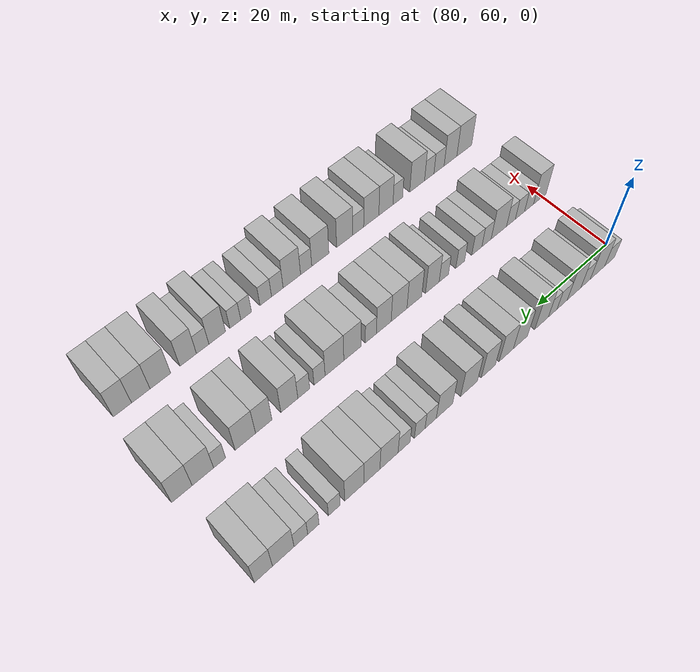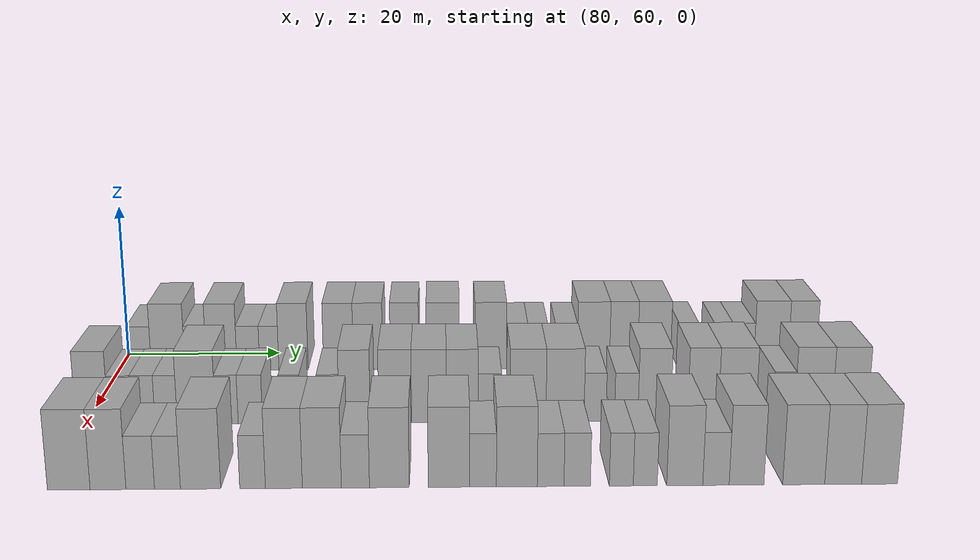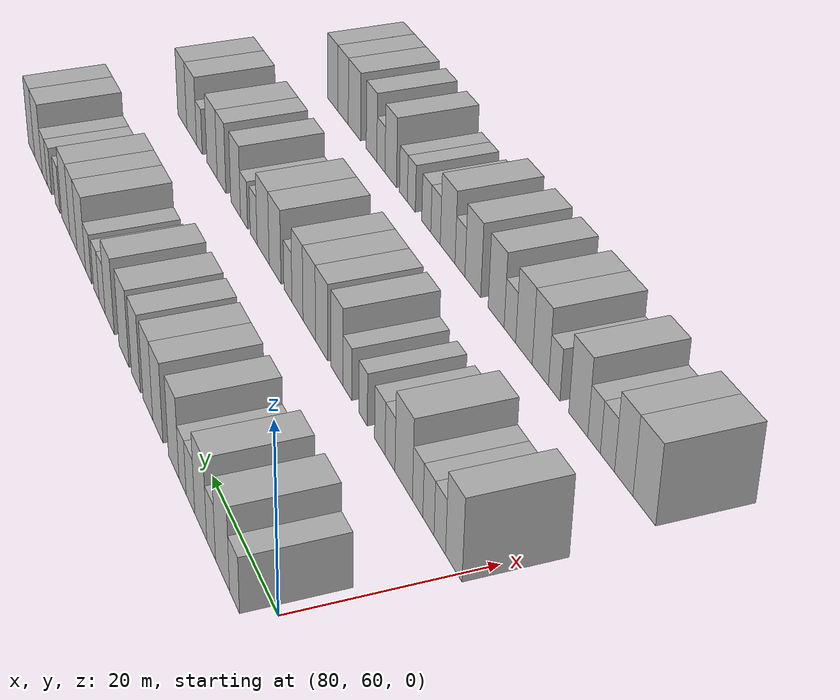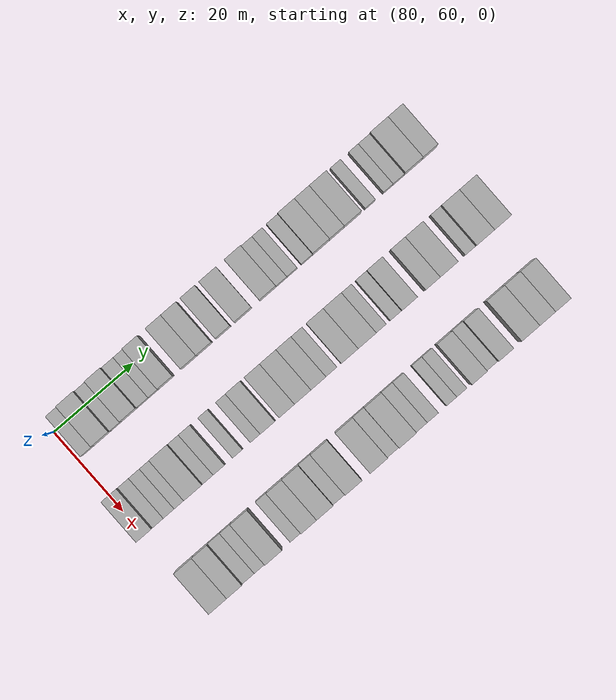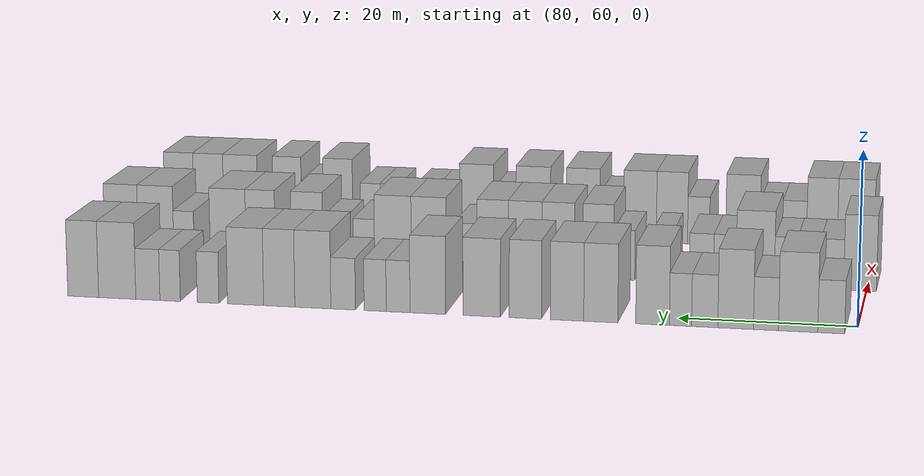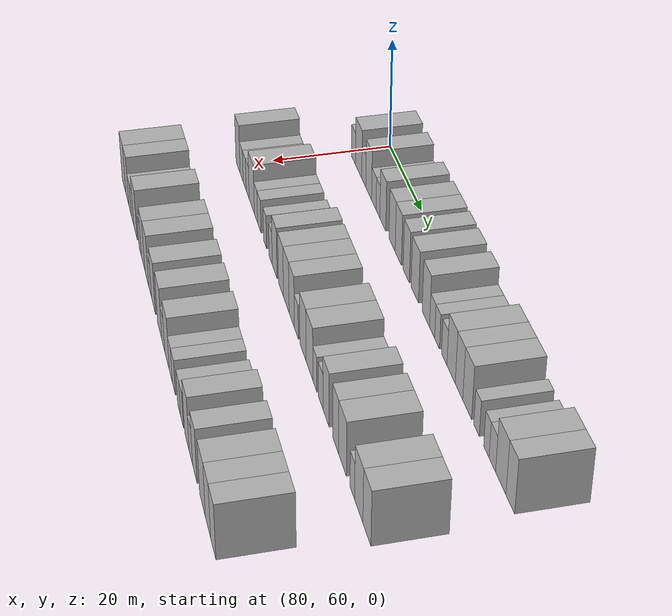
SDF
<sdf version="1.6">
 <world name="default">
  <model name="building_625">
   <static>1</static>
   <pose>82.0000 62.7774 0 0.000000 0.000000 0.000000</pose>
   <link name="link">
    <pose>0 0 3.00 0 0 0</pose>
    <collision name="collision"><geometry><box><size>10.0000 2.9419 6.0000</size></box></geometry></collision>
    <visual name="visual">
     <cast_shadows>0</cast_shadows>
     <geometry><box><size>10.0000 2.9419 6.0000</size></box></geometry>
     <material>
      <script>
       <uri>model://HANNAS_wall/materials/scripts</uri>
       <uri>model://HANNAS_wall/materials/textures</uri>
       <name>vrc/HANNAS_wall</name>
      </script>
     </material>
    </visual>
   </link>
  </model>
  <model name="building_626">
   <static>1</static>
   <pose>82.0000 66.4044 0 0.000000 0.000000 0.000000</pose>
   <link name="link">
    <pose>0 0 4.50 0 0 0</pose>
    <collision name="collision"><geometry><box><size>10.0000 4.3121 9.0000</size></box></geometry></collision>
    <visual name="visual">
     <cast_shadows>0</cast_shadows>
     <geometry><box><size>10.0000 4.3121 9.0000</size></box></geometry>
     <material>
      <script>
       <uri>model://HANNAS_wall/materials/scripts</uri>
       <uri>model://HANNAS_wall/materials/textures</uri>
       <name>vrc/HANNAS_wall</name>
      </script>
     </material>
    </visual>
   </link>
  </model>
  <model name="building_627">
   <static>1</static>
   <pose>82.0000 69.9428 0 0.000000 0.000000 0.000000</pose>
   <link name="link">
    <pose>0 0 3.00 0 0 0</pose>
    <collision name="collision"><geometry><box><size>10.0000 2.7647 6.0000</size></box></geometry></collision>
    <visual name="visual">
     <cast_shadows>0</cast_shadows>
     <geometry><box><size>10.0000 2.7647 6.0000</size></box></geometry>
     <material>
      <script>
       <uri>model://HANNAS_wall/materials/scripts</uri>
       <uri>model://HANNAS_wall/materials/textures</uri>
       <name>vrc/HANNAS_wall</name>
      </script>
     </material>
    </visual>
   </link>
  </model>
  <model name="building_628">
   <static>1</static>
   <pose>82.0000 73.2888 0 0.000000 0.000000 0.000000</pose>
   <link name="link">
    <pose>0 0 4.50 0 0 0</pose>
    <collision name="collision"><geometry><box><size>10.0000 3.9273 9.0000</size></box></geometry></collision>
    <visual name="visual">
     <cast_shadows>0</cast_shadows>
     <geometry><box><size>10.0000 3.9273 9.0000</size></box></geometry>
     <material>
      <script>
       <uri>model://HANNAS_wall/materials/scripts</uri>
       <uri>model://HANNAS_wall/materials/textures</uri>
       <name>vrc/HANNAS_wall</name>
      </script>
     </material>
    </visual>
   </link>
  </model>
  <model name="building_629">
   <static>1</static>
   <pose>82.0000 76.7108 0 0.000000 0.000000 0.000000</pose>
   <link name="link">
    <pose>0 0 3.00 0 0 0</pose>
    <collision name="collision"><geometry><box><size>10.0000 2.9167 6.0000</size></box></geometry></collision>
    <visual name="visual">
     <cast_shadows>0</cast_shadows>
     <geometry><box><size>10.0000 2.9167 6.0000</size></box></geometry>
     <material>
      <script>
       <uri>model://HANNAS_wall/materials/scripts</uri>
       <uri>model://HANNAS_wall/materials/textures</uri>
       <name>vrc/HANNAS_wall</name>
      </script>
     </material>
    </visual>
   </link>
  </model>
  <model name="building_630">
   <static>1</static>
   <pose>82.0000 79.4009 0 0.000000 0.000000 0.000000</pose>
   <link name="link">
    <pose>0 0 3.00 0 0 0</pose>
    <collision name="collision"><geometry><box><size>10.0000 2.4635 6.0000</size></box></geometry></collision>
    <visual name="visual">
     <cast_shadows>0</cast_shadows>
     <geometry><box><size>10.0000 2.4635 6.0000</size></box></geometry>
     <material>
      <script>
       <uri>model://HANNAS_wall/materials/scripts</uri>
       <uri>model://HANNAS_wall/materials/textures</uri>
       <name>vrc/HANNAS_wall</name>
      </script>
     </material>
    </visual>
   </link>
  </model>
  <model name="building_631">
   <static>1</static>
   <pose>82.0000 82.5160 0 0.000000 0.000000 0.000000</pose>
   <link name="link">
    <pose>0 0 4.50 0 0 0</pose>
    <collision name="collision"><geometry><box><size>10.0000 3.7666 9.0000</size></box></geometry></collision>
    <visual name="visual">
     <cast_shadows>0</cast_shadows>
     <geometry><box><size>10.0000 3.7666 9.0000</size></box></geometry>
     <material>
      <script>
       <uri>model://HANNAS_wall/materials/scripts</uri>
       <uri>model://HANNAS_wall/materials/textures</uri>
       <name>vrc/HANNAS_wall</name>
      </script>
     </material>
    </visual>
   </link>
  </model>
  <model name="building_632">
   <static>1</static>
   <pose>82.0000 88.3136 0 0.000000 0.000000 0.000000</pose>
   <link name="link">
    <pose>0 0 4.50 0 0 0</pose>
    <collision name="collision"><geometry><box><size>10.0000 3.8288 9.0000</size></box></geometry></collision>
    <visual name="visual">
     <cast_shadows>0</cast_shadows>
     <geometry><box><size>10.0000 3.8288 9.0000</size></box></geometry>
     <material>
      <script>
       <uri>model://HANNAS_wall/materials/scripts</uri>
       <uri>model://HANNAS_wall/materials/textures</uri>
       <name>vrc/HANNAS_wall</name>
      </script>
     </material>
    </visual>
   </link>
  </model>
  <model name="building_633">
   <static>1</static>
   <pose>82.0000 92.1205 0 0.000000 0.000000 0.000000</pose>
   <link name="link">
    <pose>0 0 4.50 0 0 0</pose>
    <collision name="collision"><geometry><box><size>10.0000 3.7850 9.0000</size></box></geometry></collision>
    <visual name="visual">
     <cast_shadows>0</cast_shadows>
     <geometry><box><size>10.0000 3.7850 9.0000</size></box></geometry>
     <material>
      <script>
       <uri>model://HANNAS_wall/materials/scripts</uri>
       <uri>model://HANNAS_wall/materials/textures</uri>
       <name>vrc/HANNAS_wall</name>
      </script>
     </material>
    </visual>
   </link>
  </model>
  <model name="building_634">
   <static>1</static>
   <pose>82.0000 96.8387 0 0.000000 0.000000 0.000000</pose>
   <link name="link">
    <pose>0 0 4.50 0 0 0</pose>
    <collision name="collision"><geometry><box><size>10.0000 3.6514 9.0000</size></box></geometry></collision>
    <visual name="visual">
     <cast_shadows>0</cast_shadows>
     <geometry><box><size>10.0000 3.6514 9.0000</size></box></geometry>
     <material>
      <script>
       <uri>model://HANNAS_wall/materials/scripts</uri>
       <uri>model://HANNAS_wall/materials/textures</uri>
       <name>vrc/HANNAS_wall</name>
      </script>
     </material>
    </visual>
   </link>
  </model>
  <model name="building_635">
   <static>1</static>
   <pose>82.0000 101.7989 0 0.000000 0.000000 0.000000</pose>
   <link name="link">
    <pose>0 0 4.50 0 0 0</pose>
    <collision name="collision"><geometry><box><size>10.0000 4.2690 9.0000</size></box></geometry></collision>
    <visual name="visual">
     <cast_shadows>0</cast_shadows>
     <geometry><box><size>10.0000 4.2690 9.0000</size></box></geometry>
     <material>
      <script>
       <uri>model://HANNAS_wall/materials/scripts</uri>
       <uri>model://HANNAS_wall/materials/textures</uri>
       <name>vrc/HANNAS_wall</name>
      </script>
     </material>
    </visual>
   </link>
  </model>
  <model name="building_636">
   <static>1</static>
   <pose>82.0000 107.9716 0 0.000000 0.000000 0.000000</pose>
   <link name="link">
    <pose>0 0 4.50 0 0 0</pose>
    <collision name="collision"><geometry><box><size>10.0000 4.0763 9.0000</size></box></geometry></collision>
    <visual name="visual">
     <cast_shadows>0</cast_shadows>
     <geometry><box><size>10.0000 4.0763 9.0000</size></box></geometry>
     <material>
      <script>
       <uri>model://HANNAS_wall/materials/scripts</uri>
       <uri>model://HANNAS_wall/materials/textures</uri>
       <name>vrc/HANNAS_wall</name>
      </script>
     </material>
    </visual>
   </link>
  </model>
  <model name="building_637">
   <static>1</static>
   <pose>82.0000 111.3752 0 0.000000 0.000000 0.000000</pose>
   <link name="link">
    <pose>0 0 3.00 0 0 0</pose>
    <collision name="collision"><geometry><box><size>10.0000 2.7310 6.0000</size></box></geometry></collision>
    <visual name="visual">
     <cast_shadows>0</cast_shadows>
     <geometry><box><size>10.0000 2.7310 6.0000</size></box></geometry>
     <material>
      <script>
       <uri>model://HANNAS_wall/materials/scripts</uri>
       <uri>model://HANNAS_wall/materials/textures</uri>
       <name>vrc/HANNAS_wall</name>
      </script>
     </material>
    </visual>
   </link>
  </model>
  <model name="building_638">
   <static>1</static>
   <pose>82.0000 114.0238 0 0.000000 0.000000 0.000000</pose>
   <link name="link">
    <pose>0 0 3.00 0 0 0</pose>
    <collision name="collision"><geometry><box><size>10.0000 2.5661 6.0000</size></box></geometry></collision>
    <visual name="visual">
     <cast_shadows>0</cast_shadows>
     <geometry><box><size>10.0000 2.5661 6.0000</size></box></geometry>
     <material>
      <script>
       <uri>model://HANNAS_wall/materials/scripts</uri>
       <uri>model://HANNAS_wall/materials/textures</uri>
       <name>vrc/HANNAS_wall</name>
      </script>
     </material>
    </visual>
   </link>
  </model>
  <model name="building_639">
   <static>1</static>
   <pose>82.0000 117.7300 0 0.000000 0.000000 0.000000</pose>
   <link name="link">
    <pose>0 0 3.00 0 0 0</pose>
    <collision name="collision"><geometry><box><size>10.0000 2.8463 6.0000</size></box></geometry></collision>
    <visual name="visual">
     <cast_shadows>0</cast_shadows>
     <geometry><box><size>10.0000 2.8463 6.0000</size></box></geometry>
     <material>
      <script>
       <uri>model://HANNAS_wall/materials/scripts</uri>
       <uri>model://HANNAS_wall/materials/textures</uri>
       <name>vrc/HANNAS_wall</name>
      </script>
     </material>
    </visual>
   </link>
  </model>
  <model name="building_640">
   <static>1</static>
   <pose>82.0000 121.2483 0 0.000000 0.000000 0.000000</pose>
   <link name="link">
    <pose>0 0 4.50 0 0 0</pose>
    <collision name="collision"><geometry><box><size>10.0000 4.1904 9.0000</size></box></geometry></collision>
    <visual name="visual">
     <cast_shadows>0</cast_shadows>
     <geometry><box><size>10.0000 4.1904 9.0000</size></box></geometry>
     <material>
      <script>
       <uri>model://HANNAS_wall/materials/scripts</uri>
       <uri>model://HANNAS_wall/materials/textures</uri>
       <name>vrc/HANNAS_wall</name>
      </script>
     </material>
    </visual>
   </link>
  </model>
  <model name="building_641">
   <static>1</static>
   <pose>82.0000 125.1697 0 0.000000 0.000000 0.000000</pose>
   <link name="link">
    <pose>0 0 4.50 0 0 0</pose>
    <collision name="collision"><geometry><box><size>10.0000 3.6525 9.0000</size></box></geometry></collision>
    <visual name="visual">
     <cast_shadows>0</cast_shadows>
     <geometry><box><size>10.0000 3.6525 9.0000</size></box></geometry>
     <material>
      <script>
       <uri>model://HANNAS_wall/materials/scripts</uri>
       <uri>model://HANNAS_wall/materials/textures</uri>
       <name>vrc/HANNAS_wall</name>
      </script>
     </material>
    </visual>
   </link>
  </model>
  <model name="building_642">
   <static>1</static>
   <pose>82.0000 129.1189 0 0.000000 0.000000 0.000000</pose>
   <link name="link">
    <pose>0 0 4.50 0 0 0</pose>
    <collision name="collision"><geometry><box><size>10.0000 4.2458 9.0000</size></box></geometry></collision>
    <visual name="visual">
     <cast_shadows>0</cast_shadows>
     <geometry><box><size>10.0000 4.2458 9.0000</size></box></geometry>
     <material>
      <script>
       <uri>model://HANNAS_wall/materials/scripts</uri>
       <uri>model://HANNAS_wall/materials/textures</uri>
       <name>vrc/HANNAS_wall</name>
      </script>
     </material>
    </visual>
   </link>
  </model>
  <model name="building_643">
   <static>1</static>
   <pose>82.0000 133.5250 0 0.000000 0.000000 0.000000</pose>
   <link name="link">
    <pose>0 0 3.00 0 0 0</pose>
    <collision name="collision"><geometry><box><size>10.0000 2.5663 6.0000</size></box></geometry></collision>
    <visual name="visual">
     <cast_shadows>0</cast_shadows>
     <geometry><box><size>10.0000 2.5663 6.0000</size></box></geometry>
     <material>
      <script>
       <uri>model://HANNAS_wall/materials/scripts</uri>
       <uri>model://HANNAS_wall/materials/textures</uri>
       <name>vrc/HANNAS_wall</name>
      </script>
     </material>
    </visual>
   </link>
  </model>
  <model name="building_644">
   <static>1</static>
   <pose>82.0000 138.0152 0 0.000000 0.000000 0.000000</pose>
   <link name="link">
    <pose>0 0 3.00 0 0 0</pose>
    <collision name="collision"><geometry><box><size>10.0000 2.4141 6.0000</size></box></geometry></collision>
    <visual name="visual">
     <cast_shadows>0</cast_shadows>
     <geometry><box><size>10.0000 2.4141 6.0000</size></box></geometry>
     <material>
      <script>
       <uri>model://HANNAS_wall/materials/scripts</uri>
       <uri>model://HANNAS_wall/materials/textures</uri>
       <name>vrc/HANNAS_wall</name>
      </script>
     </material>
    </visual>
   </link>
  </model>
  <model name="building_645">
   <static>1</static>
   <pose>82.0000 140.6534 0 0.000000 0.000000 0.000000</pose>
   <link name="link">
    <pose>0 0 3.00 0 0 0</pose>
    <collision name="collision"><geometry><box><size>10.0000 2.8622 6.0000</size></box></geometry></collision>
    <visual name="visual">
     <cast_shadows>0</cast_shadows>
     <geometry><box><size>10.0000 2.8622 6.0000</size></box></geometry>
     <material>
      <script>
       <uri>model://HANNAS_wall/materials/scripts</uri>
       <uri>model://HANNAS_wall/materials/textures</uri>
       <name>vrc/HANNAS_wall</name>
      </script>
     </material>
    </visual>
   </link>
  </model>
  <model name="building_646">
   <static>1</static>
   <pose>82.0000 144.3060 0 0.000000 0.000000 0.000000</pose>
   <link name="link">
    <pose>0 0 4.50 0 0 0</pose>
    <collision name="collision"><geometry><box><size>10.0000 4.4430 9.0000</size></box></geometry></collision>
    <visual name="visual">
     <cast_shadows>0</cast_shadows>
     <geometry><box><size>10.0000 4.4430 9.0000</size></box></geometry>
     <material>
      <script>
       <uri>model://HANNAS_wall/materials/scripts</uri>
       <uri>model://HANNAS_wall/materials/textures</uri>
       <name>vrc/HANNAS_wall</name>
      </script>
     </material>
    </visual>
   </link>
  </model>
  <model name="building_647">
   <static>1</static>
   <pose>82.0000 148.3670 0 0.000000 0.000000 0.000000</pose>
   <link name="link">
    <pose>0 0 4.50 0 0 0</pose>
    <collision name="collision"><geometry><box><size>10.0000 3.6790 9.0000</size></box></geometry></collision>
    <visual name="visual">
     <cast_shadows>0</cast_shadows>
     <geometry><box><size>10.0000 3.6790 9.0000</size></box></geometry>
     <material>
      <script>
       <uri>model://HANNAS_wall/materials/scripts</uri>
       <uri>model://HANNAS_wall/materials/textures</uri>
       <name>vrc/HANNAS_wall</name>
      </script>
     </material>
    </visual>
   </link>
  </model>
  <model name="building_803">
   <static>1</static>
   <pose>101.0000 60.8245 0 0.000000 0.000000 0.000000</pose>
   <link name="link">
    <pose>0 0 4.50 0 0 0</pose>
    <collision name="collision"><geometry><box><size>10.0000 3.7912 9.0000</size></box></geometry></collision>
    <visual name="visual">
     <cast_shadows>0</cast_shadows>
     <geometry><box><size>10.0000 3.7912 9.0000</size></box></geometry>
     <material>
      <script>
       <uri>model://HANNAS_wall/materials/scripts</uri>
       <uri>model://HANNAS_wall/materials/textures</uri>
       <name>vrc/HANNAS_wall</name>
      </script>
     </material>
    </visual>
   </link>
  </model>
  <model name="building_804">
   <static>1</static>
   <pose>101.0000 64.0797 0 0.000000 0.000000 0.000000</pose>
   <link name="link">
    <pose>0 0 3.00 0 0 0</pose>
    <collision name="collision"><geometry><box><size>10.0000 2.7193 6.0000</size></box></geometry></collision>
    <visual name="visual">
     <cast_shadows>0</cast_shadows>
     <geometry><box><size>10.0000 2.7193 6.0000</size></box></geometry>
     <material>
      <script>
       <uri>model://HANNAS_wall/materials/scripts</uri>
       <uri>model://HANNAS_wall/materials/textures</uri>
       <name>vrc/HANNAS_wall</name>
      </script>
     </material>
    </visual>
   </link>
  </model>
  <model name="building_805">
   <static>1</static>
   <pose>101.0000 66.7904 0 0.000000 0.000000 0.000000</pose>
   <link name="link">
    <pose>0 0 3.00 0 0 0</pose>
    <collision name="collision"><geometry><box><size>10.0000 2.7021 6.0000</size></box></geometry></collision>
    <visual name="visual">
     <cast_shadows>0</cast_shadows>
     <geometry><box><size>10.0000 2.7021 6.0000</size></box></geometry>
     <material>
      <script>
       <uri>model://HANNAS_wall/materials/scripts</uri>
       <uri>model://HANNAS_wall/materials/textures</uri>
       <name>vrc/HANNAS_wall</name>
      </script>
     </material>
    </visual>
   </link>
  </model>
  <model name="building_806">
   <static>1</static>
   <pose>101.0000 69.4376 0 0.000000 0.000000 0.000000</pose>
   <link name="link">
    <pose>0 0 3.00 0 0 0</pose>
    <collision name="collision"><geometry><box><size>10.0000 2.5922 6.0000</size></box></geometry></collision>
    <visual name="visual">
     <cast_shadows>0</cast_shadows>
     <geometry><box><size>10.0000 2.5922 6.0000</size></box></geometry>
     <material>
      <script>
       <uri>model://HANNAS_wall/materials/scripts</uri>
       <uri>model://HANNAS_wall/materials/textures</uri>
       <name>vrc/HANNAS_wall</name>
      </script>
     </material>
    </visual>
   </link>
  </model>
  <model name="building_807">
   <static>1</static>
   <pose>101.0000 72.9693 0 0.000000 0.000000 0.000000</pose>
   <link name="link">
    <pose>0 0 4.50 0 0 0</pose>
    <collision name="collision"><geometry><box><size>10.0000 4.4713 9.0000</size></box></geometry></collision>
    <visual name="visual">
     <cast_shadows>0</cast_shadows>
     <geometry><box><size>10.0000 4.4713 9.0000</size></box></geometry>
     <material>
      <script>
       <uri>model://HANNAS_wall/materials/scripts</uri>
       <uri>model://HANNAS_wall/materials/textures</uri>
       <name>vrc/HANNAS_wall</name>
      </script>
     </material>
    </visual>
   </link>
  </model>
  <model name="building_808">
   <static>1</static>
   <pose>101.0000 76.5207 0 0.000000 0.000000 0.000000</pose>
   <link name="link">
    <pose>0 0 3.00 0 0 0</pose>
    <collision name="collision"><geometry><box><size>10.0000 2.6314 6.0000</size></box></geometry></collision>
    <visual name="visual">
     <cast_shadows>0</cast_shadows>
     <geometry><box><size>10.0000 2.6314 6.0000</size></box></geometry>
     <material>
      <script>
       <uri>model://HANNAS_wall/materials/scripts</uri>
       <uri>model://HANNAS_wall/materials/textures</uri>
       <name>vrc/HANNAS_wall</name>
      </script>
     </material>
    </visual>
   </link>
  </model>
  <model name="building_809">
   <static>1</static>
   <pose>101.0000 79.2591 0 0.000000 0.000000 0.000000</pose>
   <link name="link">
    <pose>0 0 3.00 0 0 0</pose>
    <collision name="collision"><geometry><box><size>10.0000 2.8453 6.0000</size></box></geometry></collision>
    <visual name="visual">
     <cast_shadows>0</cast_shadows>
     <geometry><box><size>10.0000 2.8453 6.0000</size></box></geometry>
     <material>
      <script>
       <uri>model://HANNAS_wall/materials/scripts</uri>
       <uri>model://HANNAS_wall/materials/textures</uri>
       <name>vrc/HANNAS_wall</name>
      </script>
     </material>
    </visual>
   </link>
  </model>
  <model name="building_810">
   <static>1</static>
   <pose>101.0000 83.8933 0 0.000000 0.000000 0.000000</pose>
   <link name="link">
    <pose>0 0 3.00 0 0 0</pose>
    <collision name="collision"><geometry><box><size>10.0000 2.4231 6.0000</size></box></geometry></collision>
    <visual name="visual">
     <cast_shadows>0</cast_shadows>
     <geometry><box><size>10.0000 2.4231 6.0000</size></box></geometry>
     <material>
      <script>
       <uri>model://HANNAS_wall/materials/scripts</uri>
       <uri>model://HANNAS_wall/materials/textures</uri>
       <name>vrc/HANNAS_wall</name>
      </script>
     </material>
    </visual>
   </link>
  </model>
  <model name="building_811">
   <static>1</static>
   <pose>101.0000 88.3758 0 0.000000 0.000000 0.000000</pose>
   <link name="link">
    <pose>0 0 3.00 0 0 0</pose>
    <collision name="collision"><geometry><box><size>10.0000 2.5420 6.0000</size></box></geometry></collision>
    <visual name="visual">
     <cast_shadows>0</cast_shadows>
     <geometry><box><size>10.0000 2.5420 6.0000</size></box></geometry>
     <material>
      <script>
       <uri>model://HANNAS_wall/materials/scripts</uri>
       <uri>model://HANNAS_wall/materials/textures</uri>
       <name>vrc/HANNAS_wall</name>
      </script>
     </material>
    </visual>
   </link>
  </model>
  <model name="building_812">
   <static>1</static>
   <pose>101.0000 91.4692 0 0.000000 0.000000 0.000000</pose>
   <link name="link">
    <pose>0 0 4.50 0 0 0</pose>
    <collision name="collision"><geometry><box><size>10.0000 3.6448 9.0000</size></box></geometry></collision>
    <visual name="visual">
     <cast_shadows>0</cast_shadows>
     <geometry><box><size>10.0000 3.6448 9.0000</size></box></geometry>
     <material>
      <script>
       <uri>model://HANNAS_wall/materials/scripts</uri>
       <uri>model://HANNAS_wall/materials/textures</uri>
       <name>vrc/HANNAS_wall</name>
      </script>
     </material>
    </visual>
   </link>
  </model>
  <model name="building_813">
   <static>1</static>
   <pose>101.0000 96.2121 0 0.000000 0.000000 0.000000</pose>
   <link name="link">
    <pose>0 0 4.50 0 0 0</pose>
    <collision name="collision"><geometry><box><size>10.0000 3.8410 9.0000</size></box></geometry></collision>
    <visual name="visual">
     <cast_shadows>0</cast_shadows>
     <geometry><box><size>10.0000 3.8410 9.0000</size></box></geometry>
     <material>
      <script>
       <uri>model://HANNAS_wall/materials/scripts</uri>
       <uri>model://HANNAS_wall/materials/textures</uri>
       <name>vrc/HANNAS_wall</name>
      </script>
     </material>
    </visual>
   </link>
  </model>
  <model name="building_814">
   <static>1</static>
   <pose>101.0000 100.1646 0 0.000000 0.000000 0.000000</pose>
   <link name="link">
    <pose>0 0 4.50 0 0 0</pose>
    <collision name="collision"><geometry><box><size>10.0000 4.0640 9.0000</size></box></geometry></collision>
    <visual name="visual">
     <cast_shadows>0</cast_shadows>
     <geometry><box><size>10.0000 4.0640 9.0000</size></box></geometry>
     <material>
      <script>
       <uri>model://HANNAS_wall/materials/scripts</uri>
       <uri>model://HANNAS_wall/materials/textures</uri>
       <name>vrc/HANNAS_wall</name>
      </script>
     </material>
    </visual>
   </link>
  </model>
  <model name="building_815">
   <static>1</static>
   <pose>101.0000 104.0586 0 0.000000 0.000000 0.000000</pose>
   <link name="link">
    <pose>0 0 4.50 0 0 0</pose>
    <collision name="collision"><geometry><box><size>10.0000 3.7241 9.0000</size></box></geometry></collision>
    <visual name="visual">
     <cast_shadows>0</cast_shadows>
     <geometry><box><size>10.0000 3.7241 9.0000</size></box></geometry>
     <material>
      <script>
       <uri>model://HANNAS_wall/materials/scripts</uri>
       <uri>model://HANNAS_wall/materials/textures</uri>
       <name>vrc/HANNAS_wall</name>
      </script>
     </material>
    </visual>
   </link>
  </model>
  <model name="building_816">
   <static>1</static>
   <pose>101.0000 107.3016 0 0.000000 0.000000 0.000000</pose>
   <link name="link">
    <pose>0 0 3.00 0 0 0</pose>
    <collision name="collision"><geometry><box><size>10.0000 2.7618 6.0000</size></box></geometry></collision>
    <visual name="visual">
     <cast_shadows>0</cast_shadows>
     <geometry><box><size>10.0000 2.7618 6.0000</size></box></geometry>
     <material>
      <script>
       <uri>model://HANNAS_wall/materials/scripts</uri>
       <uri>model://HANNAS_wall/materials/textures</uri>
       <name>vrc/HANNAS_wall</name>
      </script>
     </material>
    </visual>
   </link>
  </model>
  <model name="building_817">
   <static>1</static>
   <pose>101.0000 111.7933 0 0.000000 0.000000 0.000000</pose>
   <link name="link">
    <pose>0 0 4.50 0 0 0</pose>
    <collision name="collision"><geometry><box><size>10.0000 4.2216 9.0000</size></box></geometry></collision>
    <visual name="visual">
     <cast_shadows>0</cast_shadows>
     <geometry><box><size>10.0000 4.2216 9.0000</size></box></geometry>
     <material>
      <script>
       <uri>model://HANNAS_wall/materials/scripts</uri>
       <uri>model://HANNAS_wall/materials/textures</uri>
       <name>vrc/HANNAS_wall</name>
      </script>
     </material>
    </visual>
   </link>
  </model>
  <model name="building_818">
   <static>1</static>
   <pose>101.0000 116.1415 0 0.000000 0.000000 0.000000</pose>
   <link name="link">
    <pose>0 0 4.50 0 0 0</pose>
    <collision name="collision"><geometry><box><size>10.0000 4.4748 9.0000</size></box></geometry></collision>
    <visual name="visual">
     <cast_shadows>0</cast_shadows>
     <geometry><box><size>10.0000 4.4748 9.0000</size></box></geometry>
     <material>
      <script>
       <uri>model://HANNAS_wall/materials/scripts</uri>
       <uri>model://HANNAS_wall/materials/textures</uri>
       <name>vrc/HANNAS_wall</name>
      </script>
     </material>
    </visual>
   </link>
  </model>
  <model name="building_819">
   <static>1</static>
   <pose>101.0000 119.6735 0 0.000000 0.000000 0.000000</pose>
   <link name="link">
    <pose>0 0 3.00 0 0 0</pose>
    <collision name="collision"><geometry><box><size>10.0000 2.5893 6.0000</size></box></geometry></collision>
    <visual name="visual">
     <cast_shadows>0</cast_shadows>
     <geometry><box><size>10.0000 2.5893 6.0000</size></box></geometry>
     <material>
      <script>
       <uri>model://HANNAS_wall/materials/scripts</uri>
       <uri>model://HANNAS_wall/materials/textures</uri>
       <name>vrc/HANNAS_wall</name>
      </script>
     </material>
    </visual>
   </link>
  </model>
  <model name="building_820">
   <static>1</static>
   <pose>101.0000 123.3445 0 0.000000 0.000000 0.000000</pose>
   <link name="link">
    <pose>0 0 3.00 0 0 0</pose>
    <collision name="collision"><geometry><box><size>10.0000 2.7526 6.0000</size></box></geometry></collision>
    <visual name="visual">
     <cast_shadows>0</cast_shadows>
     <geometry><box><size>10.0000 2.7526 6.0000</size></box></geometry>
     <material>
      <script>
       <uri>model://HANNAS_wall/materials/scripts</uri>
       <uri>model://HANNAS_wall/materials/textures</uri>
       <name>vrc/HANNAS_wall</name>
      </script>
     </material>
    </visual>
   </link>
  </model>
  <model name="building_821">
   <static>1</static>
   <pose>101.0000 126.6466 0 0.000000 0.000000 0.000000</pose>
   <link name="link">
    <pose>0 0 4.50 0 0 0</pose>
    <collision name="collision"><geometry><box><size>10.0000 3.8517 9.0000</size></box></geometry></collision>
    <visual name="visual">
     <cast_shadows>0</cast_shadows>
     <geometry><box><size>10.0000 3.8517 9.0000</size></box></geometry>
     <material>
      <script>
       <uri>model://HANNAS_wall/materials/scripts</uri>
       <uri>model://HANNAS_wall/materials/textures</uri>
       <name>vrc/HANNAS_wall</name>
      </script>
     </material>
    </visual>
   </link>
  </model>
  <model name="building_822">
   <static>1</static>
   <pose>101.0000 132.3838 0 0.000000 0.000000 0.000000</pose>
   <link name="link">
    <pose>0 0 4.50 0 0 0</pose>
    <collision name="collision"><geometry><box><size>10.0000 3.6226 9.0000</size></box></geometry></collision>
    <visual name="visual">
     <cast_shadows>0</cast_shadows>
     <geometry><box><size>10.0000 3.6226 9.0000</size></box></geometry>
     <material>
      <script>
       <uri>model://HANNAS_wall/materials/scripts</uri>
       <uri>model://HANNAS_wall/materials/textures</uri>
       <name>vrc/HANNAS_wall</name>
      </script>
     </material>
    </visual>
   </link>
  </model>
  <model name="building_823">
   <static>1</static>
   <pose>101.0000 136.4168 0 0.000000 0.000000 0.000000</pose>
   <link name="link">
    <pose>0 0 4.50 0 0 0</pose>
    <collision name="collision"><geometry><box><size>10.0000 4.4434 9.0000</size></box></geometry></collision>
    <visual name="visual">
     <cast_shadows>0</cast_shadows>
     <geometry><box><size>10.0000 4.4434 9.0000</size></box></geometry>
     <material>
      <script>
       <uri>model://HANNAS_wall/materials/scripts</uri>
       <uri>model://HANNAS_wall/materials/textures</uri>
       <name>vrc/HANNAS_wall</name>
      </script>
     </material>
    </visual>
   </link>
  </model>
  <model name="building_824">
   <static>1</static>
   <pose>101.0000 141.9145 0 0.000000 0.000000 0.000000</pose>
   <link name="link">
    <pose>0 0 3.00 0 0 0</pose>
    <collision name="collision"><geometry><box><size>10.0000 2.5520 6.0000</size></box></geometry></collision>
    <visual name="visual">
     <cast_shadows>0</cast_shadows>
     <geometry><box><size>10.0000 2.5520 6.0000</size></box></geometry>
     <material>
      <script>
       <uri>model://HANNAS_wall/materials/scripts</uri>
       <uri>model://HANNAS_wall/materials/textures</uri>
       <name>vrc/HANNAS_wall</name>
      </script>
     </material>
    </visual>
   </link>
  </model>
  <model name="building_825">
   <static>1</static>
   <pose>101.0000 145.4127 0 0.000000 0.000000 0.000000</pose>
   <link name="link">
    <pose>0 0 4.50 0 0 0</pose>
    <collision name="collision"><geometry><box><size>10.0000 4.4444 9.0000</size></box></geometry></collision>
    <visual name="visual">
     <cast_shadows>0</cast_shadows>
     <geometry><box><size>10.0000 4.4444 9.0000</size></box></geometry>
     <material>
      <script>
       <uri>model://HANNAS_wall/materials/scripts</uri>
       <uri>model://HANNAS_wall/materials/textures</uri>
       <name>vrc/HANNAS_wall</name>
      </script>
     </material>
    </visual>
   </link>
  </model>
  <model name="building_826">
   <static>1</static>
   <pose>101.0000 149.7401 0 0.000000 0.000000 0.000000</pose>
   <link name="link">
    <pose>0 0 4.50 0 0 0</pose>
    <collision name="collision"><geometry><box><size>10.0000 4.2105 9.0000</size></box></geometry></collision>
    <visual name="visual">
     <cast_shadows>0</cast_shadows>
     <geometry><box><size>10.0000 4.2105 9.0000</size></box></geometry>
     <material>
      <script>
       <uri>model://HANNAS_wall/materials/scripts</uri>
       <uri>model://HANNAS_wall/materials/textures</uri>
       <name>vrc/HANNAS_wall</name>
      </script>
     </material>
    </visual>
   </link>
  </model>
  <model name="building_984">
   <static>1</static>
   <pose>120.0000 62.5243 0 0.000000 0.000000 0.000000</pose>
   <link name="link">
    <pose>0 0 4.50 0 0 0</pose>
    <collision name="collision"><geometry><box><size>10.0000 4.4651 9.0000</size></box></geometry></collision>
    <visual name="visual">
     <cast_shadows>0</cast_shadows>
     <geometry><box><size>10.0000 4.4651 9.0000</size></box></geometry>
     <material>
      <script>
       <uri>model://HANNAS_wall/materials/scripts</uri>
       <uri>model://HANNAS_wall/materials/textures</uri>
       <name>vrc/HANNAS_wall</name>
      </script>
     </material>
    </visual>
   </link>
  </model>
  <model name="building_985">
   <static>1</static>
   <pose>120.0000 66.6370 0 0.000000 0.000000 0.000000</pose>
   <link name="link">
    <pose>0 0 4.50 0 0 0</pose>
    <collision name="collision"><geometry><box><size>10.0000 3.7604 9.0000</size></box></geometry></collision>
    <visual name="visual">
     <cast_shadows>0</cast_shadows>
     <geometry><box><size>10.0000 3.7604 9.0000</size></box></geometry>
     <material>
      <script>
       <uri>model://HANNAS_wall/materials/scripts</uri>
       <uri>model://HANNAS_wall/materials/textures</uri>
       <name>vrc/HANNAS_wall</name>
      </script>
     </material>
    </visual>
   </link>
  </model>
  <model name="building_986">
   <static>1</static>
   <pose>120.0000 70.0084 0 0.000000 0.000000 0.000000</pose>
   <link name="link">
    <pose>0 0 3.00 0 0 0</pose>
    <collision name="collision"><geometry><box><size>10.0000 2.9824 6.0000</size></box></geometry></collision>
    <visual name="visual">
     <cast_shadows>0</cast_shadows>
     <geometry><box><size>10.0000 2.9824 6.0000</size></box></geometry>
     <material>
      <script>
       <uri>model://HANNAS_wall/materials/scripts</uri>
       <uri>model://HANNAS_wall/materials/textures</uri>
       <name>vrc/HANNAS_wall</name>
      </script>
     </material>
    </visual>
   </link>
  </model>
  <model name="building_987">
   <static>1</static>
   <pose>120.0000 72.8562 0 0.000000 0.000000 0.000000</pose>
   <link name="link">
    <pose>0 0 3.00 0 0 0</pose>
    <collision name="collision"><geometry><box><size>10.0000 2.7132 6.0000</size></box></geometry></collision>
    <visual name="visual">
     <cast_shadows>0</cast_shadows>
     <geometry><box><size>10.0000 2.7132 6.0000</size></box></geometry>
     <material>
      <script>
       <uri>model://HANNAS_wall/materials/scripts</uri>
       <uri>model://HANNAS_wall/materials/textures</uri>
       <name>vrc/HANNAS_wall</name>
      </script>
     </material>
    </visual>
   </link>
  </model>
  <model name="building_988">
   <static>1</static>
   <pose>120.0000 76.3245 0 0.000000 0.000000 0.000000</pose>
   <link name="link">
    <pose>0 0 4.50 0 0 0</pose>
    <collision name="collision"><geometry><box><size>10.0000 4.2234 9.0000</size></box></geometry></collision>
    <visual name="visual">
     <cast_shadows>0</cast_shadows>
     <geometry><box><size>10.0000 4.2234 9.0000</size></box></geometry>
     <material>
      <script>
       <uri>model://HANNAS_wall/materials/scripts</uri>
       <uri>model://HANNAS_wall/materials/textures</uri>
       <name>vrc/HANNAS_wall</name>
      </script>
     </material>
    </visual>
   </link>
  </model>
  <model name="building_989">
   <static>1</static>
   <pose>120.0000 81.7848 0 0.000000 0.000000 0.000000</pose>
   <link name="link">
    <pose>0 0 3.00 0 0 0</pose>
    <collision name="collision"><geometry><box><size>10.0000 2.6973 6.0000</size></box></geometry></collision>
    <visual name="visual">
     <cast_shadows>0</cast_shadows>
     <geometry><box><size>10.0000 2.6973 6.0000</size></box></geometry>
     <material>
      <script>
       <uri>model://HANNAS_wall/materials/scripts</uri>
       <uri>model://HANNAS_wall/materials/textures</uri>
       <name>vrc/HANNAS_wall</name>
      </script>
     </material>
    </visual>
   </link>
  </model>
  <model name="building_990">
   <static>1</static>
   <pose>120.0000 85.0751 0 0.000000 0.000000 0.000000</pose>
   <link name="link">
    <pose>0 0 4.50 0 0 0</pose>
    <collision name="collision"><geometry><box><size>10.0000 3.8832 9.0000</size></box></geometry></collision>
    <visual name="visual">
     <cast_shadows>0</cast_shadows>
     <geometry><box><size>10.0000 3.8832 9.0000</size></box></geometry>
     <material>
      <script>
       <uri>model://HANNAS_wall/materials/scripts</uri>
       <uri>model://HANNAS_wall/materials/textures</uri>
       <name>vrc/HANNAS_wall</name>
      </script>
     </material>
    </visual>
   </link>
  </model>
  <model name="building_991">
   <static>1</static>
   <pose>120.0000 89.0650 0 0.000000 0.000000 0.000000</pose>
   <link name="link">
    <pose>0 0 4.50 0 0 0</pose>
    <collision name="collision"><geometry><box><size>10.0000 4.0966 9.0000</size></box></geometry></collision>
    <visual name="visual">
     <cast_shadows>0</cast_shadows>
     <geometry><box><size>10.0000 4.0966 9.0000</size></box></geometry>
     <material>
      <script>
       <uri>model://HANNAS_wall/materials/scripts</uri>
       <uri>model://HANNAS_wall/materials/textures</uri>
       <name>vrc/HANNAS_wall</name>
      </script>
     </material>
    </visual>
   </link>
  </model>
  <model name="building_992">
   <static>1</static>
   <pose>120.0000 92.5929 0 0.000000 0.000000 0.000000</pose>
   <link name="link">
    <pose>0 0 3.00 0 0 0</pose>
    <collision name="collision"><geometry><box><size>10.0000 2.9591 6.0000</size></box></geometry></collision>
    <visual name="visual">
     <cast_shadows>0</cast_shadows>
     <geometry><box><size>10.0000 2.9591 6.0000</size></box></geometry>
     <material>
      <script>
       <uri>model://HANNAS_wall/materials/scripts</uri>
       <uri>model://HANNAS_wall/materials/textures</uri>
       <name>vrc/HANNAS_wall</name>
      </script>
     </material>
    </visual>
   </link>
  </model>
  <model name="building_993">
   <static>1</static>
   <pose>120.0000 96.1683 0 0.000000 0.000000 0.000000</pose>
   <link name="link">
    <pose>0 0 4.50 0 0 0</pose>
    <collision name="collision"><geometry><box><size>10.0000 4.1916 9.0000</size></box></geometry></collision>
    <visual name="visual">
     <cast_shadows>0</cast_shadows>
     <geometry><box><size>10.0000 4.1916 9.0000</size></box></geometry>
     <material>
      <script>
       <uri>model://HANNAS_wall/materials/scripts</uri>
       <uri>model://HANNAS_wall/materials/textures</uri>
       <name>vrc/HANNAS_wall</name>
      </script>
     </material>
    </visual>
   </link>
  </model>
  <model name="building_994">
   <static>1</static>
   <pose>120.0000 102.4512 0 0.000000 0.000000 0.000000</pose>
   <link name="link">
    <pose>0 0 4.50 0 0 0</pose>
    <collision name="collision"><geometry><box><size>10.0000 4.3742 9.0000</size></box></geometry></collision>
    <visual name="visual">
     <cast_shadows>0</cast_shadows>
     <geometry><box><size>10.0000 4.3742 9.0000</size></box></geometry>
     <material>
      <script>
       <uri>model://HANNAS_wall/materials/scripts</uri>
       <uri>model://HANNAS_wall/materials/textures</uri>
       <name>vrc/HANNAS_wall</name>
      </script>
     </material>
    </visual>
   </link>
  </model>
  <model name="building_995">
   <static>1</static>
   <pose>120.0000 106.0466 0 0.000000 0.000000 0.000000</pose>
   <link name="link">
    <pose>0 0 3.00 0 0 0</pose>
    <collision name="collision"><geometry><box><size>10.0000 2.8165 6.0000</size></box></geometry></collision>
    <visual name="visual">
     <cast_shadows>0</cast_shadows>
     <geometry><box><size>10.0000 2.8165 6.0000</size></box></geometry>
     <material>
      <script>
       <uri>model://HANNAS_wall/materials/scripts</uri>
       <uri>model://HANNAS_wall/materials/textures</uri>
       <name>vrc/HANNAS_wall</name>
      </script>
     </material>
    </visual>
   </link>
  </model>
  <model name="building_996">
   <static>1</static>
   <pose>120.0000 109.6103 0 0.000000 0.000000 0.000000</pose>
   <link name="link">
    <pose>0 0 4.50 0 0 0</pose>
    <collision name="collision"><geometry><box><size>10.0000 4.3110 9.0000</size></box></geometry></collision>
    <visual name="visual">
     <cast_shadows>0</cast_shadows>
     <geometry><box><size>10.0000 4.3110 9.0000</size></box></geometry>
     <material>
      <script>
       <uri>model://HANNAS_wall/materials/scripts</uri>
       <uri>model://HANNAS_wall/materials/textures</uri>
       <name>vrc/HANNAS_wall</name>
      </script>
     </material>
    </visual>
   </link>
  </model>
  <model name="building_997">
   <static>1</static>
   <pose>120.0000 113.1816 0 0.000000 0.000000 0.000000</pose>
   <link name="link">
    <pose>0 0 3.00 0 0 0</pose>
    <collision name="collision"><geometry><box><size>10.0000 2.8316 6.0000</size></box></geometry></collision>
    <visual name="visual">
     <cast_shadows>0</cast_shadows>
     <geometry><box><size>10.0000 2.8316 6.0000</size></box></geometry>
     <material>
      <script>
       <uri>model://HANNAS_wall/materials/scripts</uri>
       <uri>model://HANNAS_wall/materials/textures</uri>
       <name>vrc/HANNAS_wall</name>
      </script>
     </material>
    </visual>
   </link>
  </model>
  <model name="building_998">
   <static>1</static>
   <pose>120.0000 115.9959 0 0.000000 0.000000 0.000000</pose>
   <link name="link">
    <pose>0 0 3.00 0 0 0</pose>
    <collision name="collision"><geometry><box><size>10.0000 2.7970 6.0000</size></box></geometry></collision>
    <visual name="visual">
     <cast_shadows>0</cast_shadows>
     <geometry><box><size>10.0000 2.7970 6.0000</size></box></geometry>
     <material>
      <script>
       <uri>model://HANNAS_wall/materials/scripts</uri>
       <uri>model://HANNAS_wall/materials/textures</uri>
       <name>vrc/HANNAS_wall</name>
      </script>
     </material>
    </visual>
   </link>
  </model>
  <model name="building_999">
   <static>1</static>
   <pose>120.0000 120.6601 0 0.000000 0.000000 0.000000</pose>
   <link name="link">
    <pose>0 0 3.00 0 0 0</pose>
    <collision name="collision"><geometry><box><size>10.0000 2.5315 6.0000</size></box></geometry></collision>
    <visual name="visual">
     <cast_shadows>0</cast_shadows>
     <geometry><box><size>10.0000 2.5315 6.0000</size></box></geometry>
     <material>
      <script>
       <uri>model://HANNAS_wall/materials/scripts</uri>
       <uri>model://HANNAS_wall/materials/textures</uri>
       <name>vrc/HANNAS_wall</name>
      </script>
     </material>
    </visual>
   </link>
  </model>
  <model name="building_1000">
   <static>1</static>
   <pose>120.0000 123.1982 0 0.000000 0.000000 0.000000</pose>
   <link name="link">
    <pose>0 0 3.00 0 0 0</pose>
    <collision name="collision"><geometry><box><size>10.0000 2.5446 6.0000</size></box></geometry></collision>
    <visual name="visual">
     <cast_shadows>0</cast_shadows>
     <geometry><box><size>10.0000 2.5446 6.0000</size></box></geometry>
     <material>
      <script>
       <uri>model://HANNAS_wall/materials/scripts</uri>
       <uri>model://HANNAS_wall/materials/textures</uri>
       <name>vrc/HANNAS_wall</name>
      </script>
     </material>
    </visual>
   </link>
  </model>
  <model name="building_1001">
   <static>1</static>
   <pose>120.0000 127.3812 0 0.000000 0.000000 0.000000</pose>
   <link name="link">
    <pose>0 0 4.50 0 0 0</pose>
    <collision name="collision"><geometry><box><size>10.0000 3.8213 9.0000</size></box></geometry></collision>
    <visual name="visual">
     <cast_shadows>0</cast_shadows>
     <geometry><box><size>10.0000 3.8213 9.0000</size></box></geometry>
     <material>
      <script>
       <uri>model://HANNAS_wall/materials/scripts</uri>
       <uri>model://HANNAS_wall/materials/textures</uri>
       <name>vrc/HANNAS_wall</name>
      </script>
     </material>
    </visual>
   </link>
  </model>
  <model name="building_1002">
   <static>1</static>
   <pose>120.0000 130.6931 0 0.000000 0.000000 0.000000</pose>
   <link name="link">
    <pose>0 0 3.00 0 0 0</pose>
    <collision name="collision"><geometry><box><size>10.0000 2.8024 6.0000</size></box></geometry></collision>
    <visual name="visual">
     <cast_shadows>0</cast_shadows>
     <geometry><box><size>10.0000 2.8024 6.0000</size></box></geometry>
     <material>
      <script>
       <uri>model://HANNAS_wall/materials/scripts</uri>
       <uri>model://HANNAS_wall/materials/textures</uri>
       <name>vrc/HANNAS_wall</name>
      </script>
     </material>
    </visual>
   </link>
  </model>
  <model name="building_1003">
   <static>1</static>
   <pose>120.0000 133.9393 0 0.000000 0.000000 0.000000</pose>
   <link name="link">
    <pose>0 0 4.50 0 0 0</pose>
    <collision name="collision"><geometry><box><size>10.0000 3.6901 9.0000</size></box></geometry></collision>
    <visual name="visual">
     <cast_shadows>0</cast_shadows>
     <geometry><box><size>10.0000 3.6901 9.0000</size></box></geometry>
     <material>
      <script>
       <uri>model://HANNAS_wall/materials/scripts</uri>
       <uri>model://HANNAS_wall/materials/textures</uri>
       <name>vrc/HANNAS_wall</name>
      </script>
     </material>
    </visual>
   </link>
  </model>
  <model name="building_1004">
   <static>1</static>
   <pose>120.0000 140.0140 0 0.000000 0.000000 0.000000</pose>
   <link name="link">
    <pose>0 0 4.50 0 0 0</pose>
    <collision name="collision"><geometry><box><size>10.0000 4.4593 9.0000</size></box></geometry></collision>
    <visual name="visual">
     <cast_shadows>0</cast_shadows>
     <geometry><box><size>10.0000 4.4593 9.0000</size></box></geometry>
     <material>
      <script>
       <uri>model://HANNAS_wall/materials/scripts</uri>
       <uri>model://HANNAS_wall/materials/textures</uri>
       <name>vrc/HANNAS_wall</name>
      </script>
     </material>
    </visual>
   </link>
  </model>
  <model name="building_1005">
   <static>1</static>
   <pose>120.0000 144.2048 0 0.000000 0.000000 0.000000</pose>
   <link name="link">
    <pose>0 0 4.50 0 0 0</pose>
    <collision name="collision"><geometry><box><size>10.0000 3.9223 9.0000</size></box></geometry></collision>
    <visual name="visual">
     <cast_shadows>0</cast_shadows>
     <geometry><box><size>10.0000 3.9223 9.0000</size></box></geometry>
     <material>
      <script>
       <uri>model://HANNAS_wall/materials/scripts</uri>
       <uri>model://HANNAS_wall/materials/textures</uri>
       <name>vrc/HANNAS_wall</name>
      </script>
     </material>
    </visual>
   </link>
  </model>
  <model name="building_1006">
   <static>1</static>
   <pose>120.0000 148.0824 0 0.000000 0.000000 0.000000</pose>
   <link name="link">
    <pose>0 0 4.50 0 0 0</pose>
    <collision name="collision"><geometry><box><size>10.0000 3.8327 9.0000</size></box></geometry></collision>
    <visual name="visual">
     <cast_shadows>0</cast_shadows>
     <geometry><box><size>10.0000 3.8327 9.0000</size></box></geometry>
     <material>
      <script>
       <uri>model://HANNAS_wall/materials/scripts</uri>
       <uri>model://HANNAS_wall/materials/textures</uri>
       <name>vrc/HANNAS_wall</name>
      </script>
     </material>
    </visual>
   </link>
  </model>
 </world>
</sdf>
